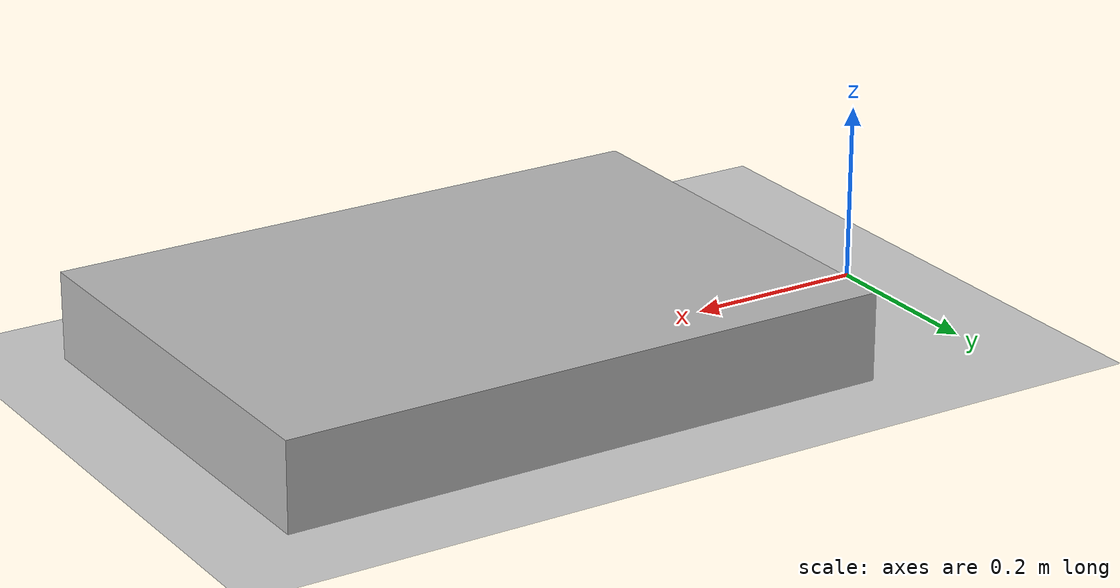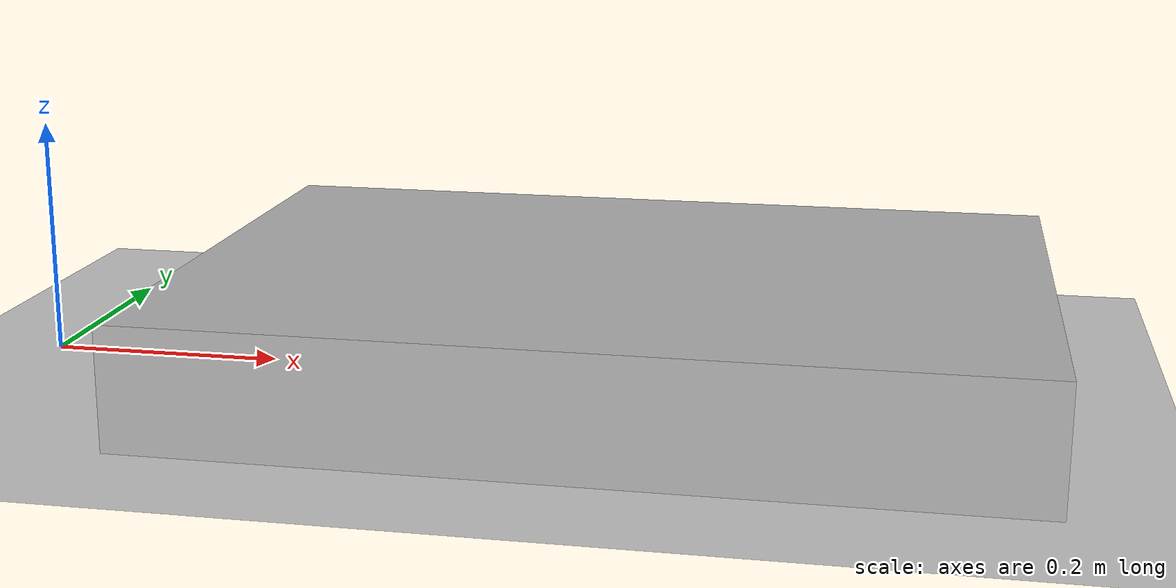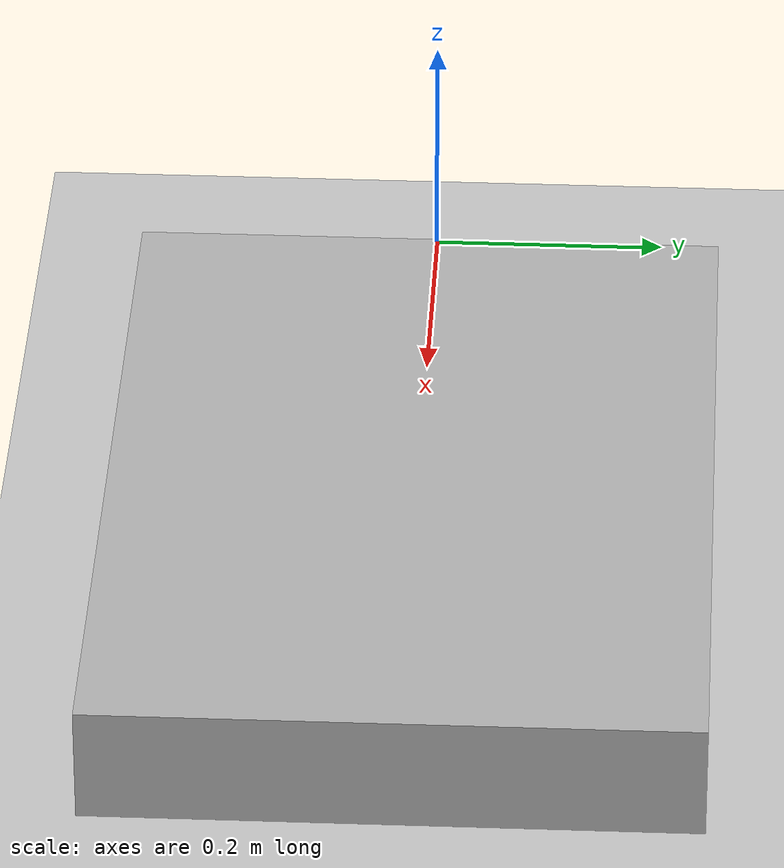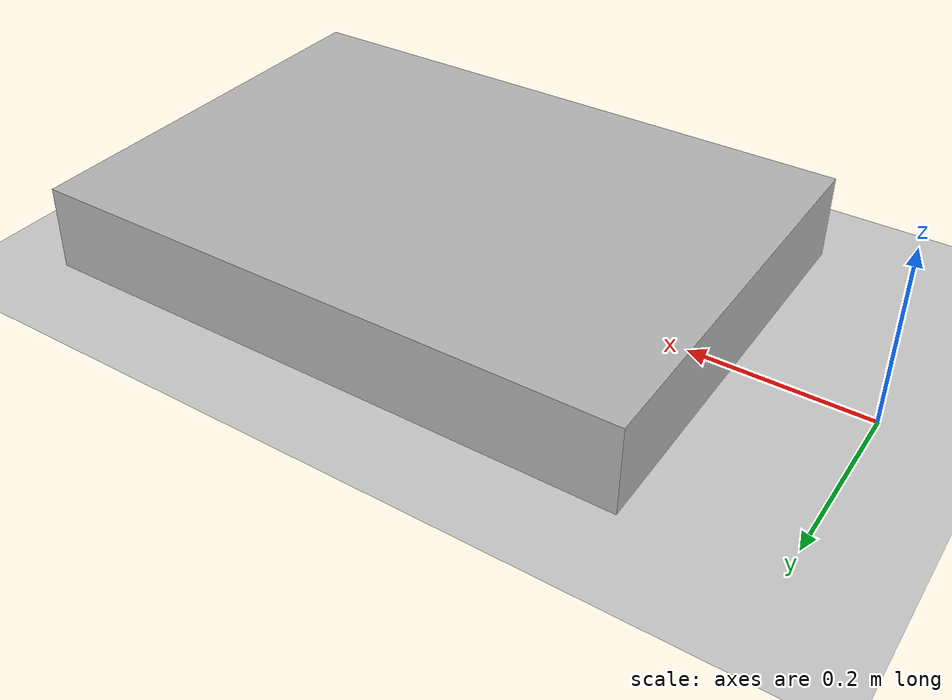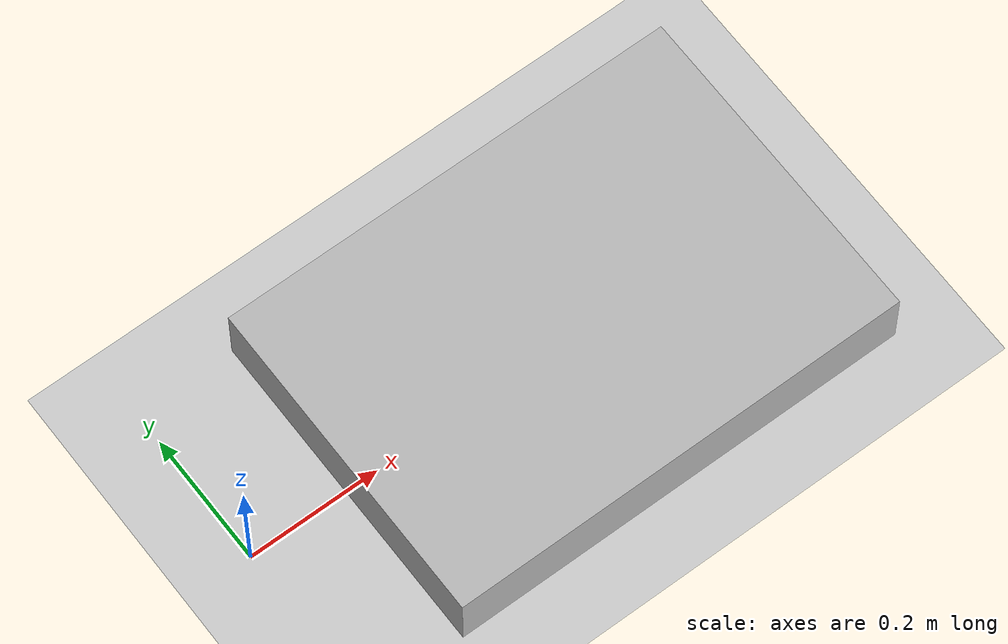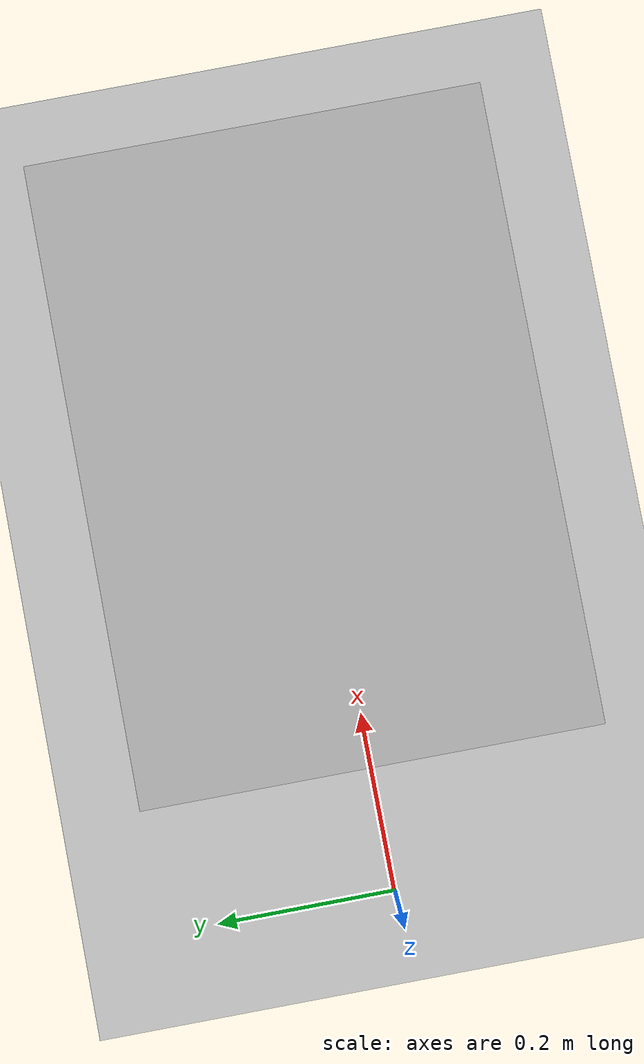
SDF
<?xml version="1.0"?>
<sdf version="1.6">
  <world name="ft_world">
    <physics name="1ms" type="ode">
      <max_step_size>0.001</max_step_size>
      <real_time_factor>1.0</real_time_factor>
    </physics>

    <plugin filename="ignition-gazebo-physics-system" name="ignition::gazebo::systems::Physics">
    </plugin>
    <plugin filename="ignition-gazebo-user-commands-system" name="ignition::gazebo::systems::UserCommands">
    </plugin>
    <plugin filename="ignition-gazebo-scene-broadcaster-system" name="ignition::gazebo::systems::SceneBroadcaster">
    </plugin>
    <plugin filename="ignition-gazebo-contact-system" name="ignition::gazebo::systems::Contact">
    </plugin>
    <plugin filename="ignition-gazebo-forcetorque-system" name="ignition::gazebo::systems::ForceTorque">
    <sensor name="panda_ft_sensor_joint"/>
    </plugin>

    <light type="directional" name="sun">
      <cast_shadows>true</cast_shadows>
      <visual>false</visual>
      <pose>0 0 100 0 0 0</pose>
      <diffuse>0.8 0.8 0.8 1</diffuse>
      <specular>0.2 0.2 0.2 1</specular>
      <attenuation>
        <range>1000</range>
        <constant>0.9</constant>
        <linear>0.01</linear>
        <quadratic>0.001</quadratic>
      </attenuation>
      <direction>-0.5 0.1 -0.9</direction>
    </light>

    <model name='ground_plane'>
      <static>true</static>
      <link name='link'>
        <collision name='collision'>
          <geometry>
            <plane>
              <normal>0 0 1</normal>
              <size>100 100</size>
            </plane>
          </geometry>
          <surface>
            <friction>
              <ode />
            </friction>
            <bounce />
            <contact />
          </surface>
        </collision>
        <visual name='visual'>
          <geometry>
            <plane>
              <normal>0 0 1</normal>
              <size>100 100</size>
            </plane>
          </geometry>
          <material>
            <ambient>0.8 0.8 0.8 1</ambient>
            <diffuse>0.8 0.8 0.8 1</diffuse>
            <specular>0.8 0.8 0.8 1</specular>
          </material>
        </visual>
        <pose>0 0 0 0 -0 0</pose>
        <inertial>
          <pose>0 0 0 0 -0 0</pose>
          <mass>1</mass>
          <inertia>
            <ixx>1</ixx>
            <ixy>0</ixy>
            <ixz>0</ixz>
            <iyy>1</iyy>
            <iyz>0</iyz>
            <izz>1</izz>
          </inertia>
        </inertial>
        <enable_wind>false</enable_wind>
      </link>
      <pose>0 0 0 0 -0 0</pose>
      <self_collide>false</self_collide>
    </model>
    <model name="box">
      <static>true</static>

      <link name="box">
        <visual name="visual">
          <pose>0.5 0 0.05 0 0 0</pose>
          <geometry>
            <box>
              <size>0.7 0.5 0.1</size>
            </box>
          </geometry>
        </visual>

        <collision name="collision">
          <pose>0.5 0 1.05 0 0 0</pose>
          <geometry>
            <box>
              <size>0.7 0.5 0.1</size>
            </box>
          </geometry>
        </collision>

        <inertial>
          <pose>0 0 0 0 0 0</pose>
          <mass>20</mass>
          <inertia>
            <ixx>0.1</ixx>
            <ixy>0</ixy>
            <ixz>0</ixz>
            <iyy>0.1</iyy>
            <iyz>0</iyz>
            <izz>0.1</izz>
          </inertia>
        </inertial>
      </link>
    </model>
  </world>
</sdf>
